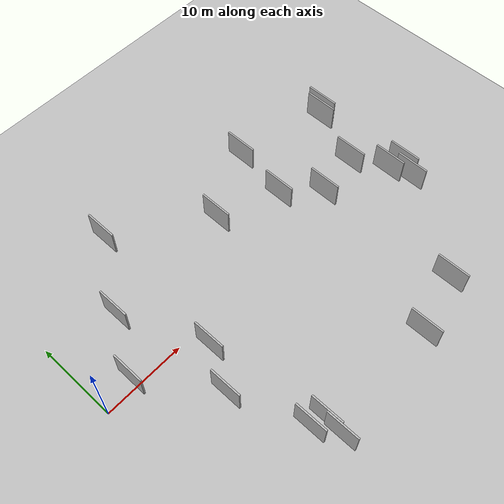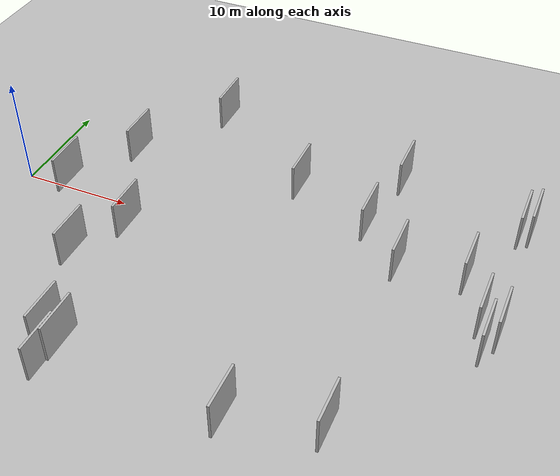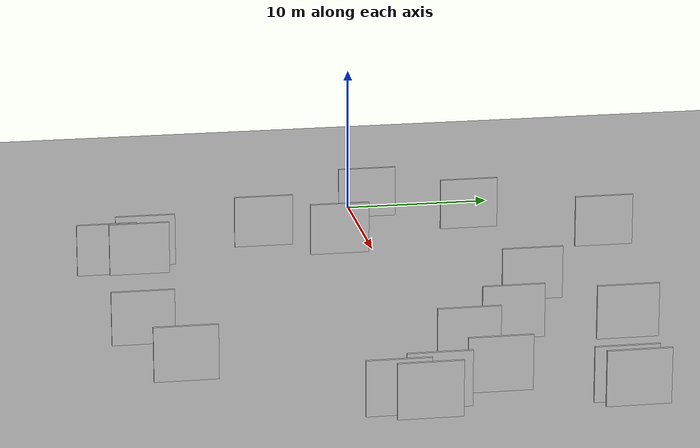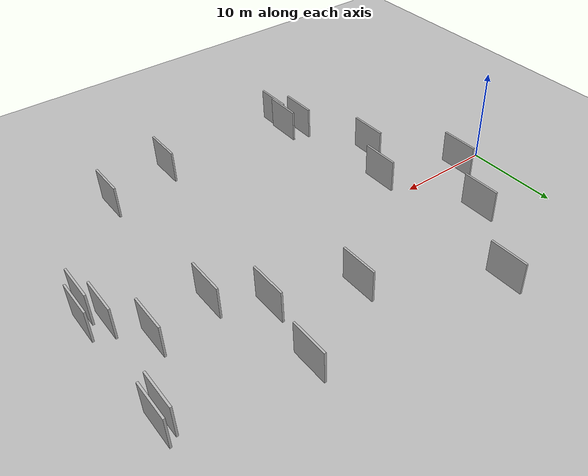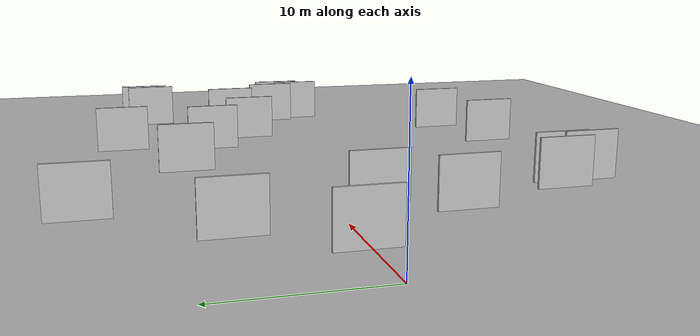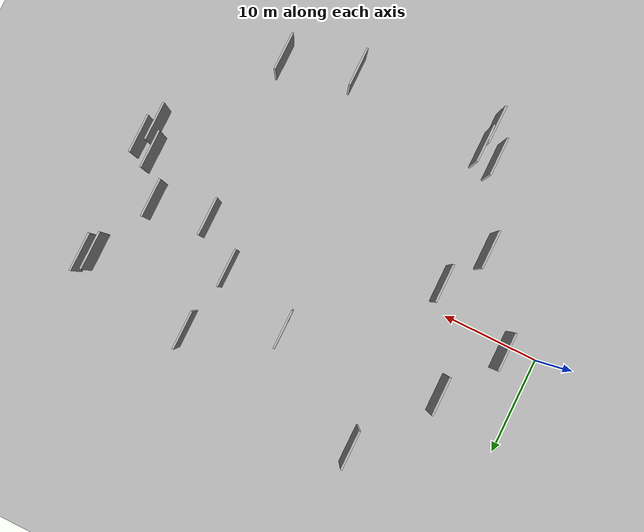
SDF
<?xml version="1.0" encoding="utf-8"?>

<sdf version="1.6">

   <world name="default">

      <gui fullscreen="0">

         <camera name="user_camera">

            <pose>-15 0 4.57585 0 0 0</pose>

            <view_controller>orbit</view_controller>

         </camera>

      </gui>

      <scene>

         <sky>

           <clouds>

             <speed>12</speed>

           </clouds>

         </sky>

         <ambient>0.4 0.4 0.4 1</ambient>

         <background>0.7 0.7 0.7 1</background>

         <shadows>1</shadows>

      </scene>

      <gravity>0 0 -9.8066</gravity>

      <magnetic_field>6e-06 2.3e-05 -4.2e-05</magnetic_field>

      <physics default="0" name="default_physics" type="ode">

         <ode>

            <solver>

               <type>quick</type>

               <iters>10</iters>

               <sor>1.0</sor>

               <use_dynamic_moi_rescaling>0</use_dynamic_moi_rescaling>

            </solver>

            <constraints>

               <cfm>0</cfm>

               <erp>0.2</erp>

               <contact_max_correcting_vel>100</contact_max_correcting_vel>

               <contact_surface_layer>0.001</contact_surface_layer>

            </constraints>

         </ode>

         <max_step_size>0.004</max_step_size>

         <real_time_factor>1</real_time_factor>

         <real_time_update_rate>250</real_time_update_rate>

      </physics>

      <light name="sun" type="directional">

         <cast_shadows>1</cast_shadows>

         <pose>0 0 10 0 0 0</pose>

         <diffuse>0.8 0.8 0.8 1</diffuse>

         <specular>0.2 0.2 0.2 1</specular>

         <attenuation>

            <range>1000</range>

            <constant>0.9</constant>

            <linear>0.01</linear>

            <quadratic>0.001</quadratic>

         </attenuation>

         <direction>-0.5 0.1 -0.9</direction>

      </light>

      <include>

         <name>ground_plane_1</name>

         <uri>model://HANNAS_ground_plane</uri>

         <pose>0 0 0  0 0 0</pose>

      </include>

      <include>

         <name>ground_plane_2</name>

         <uri>model://HANNAS_ground_plane</uri>

         <pose>100 0 0  0 0 0</pose>

      </include>

      <model name="HANNAS_wall_1">

         <static>1</static>

         <pose frame="">31.3913 5.2946 0.0 0.000000 0.000000 1.570796</pose>

         <link name="link">

            <pose frame="">0 0 2.00 0 0 0</pose>

            <collision name="collision">

               <geometry>

                  <box>

                     <size>4.00 0.2 4.00</size>

                  </box>

               </geometry>

               <max_contacts>10</max_contacts>

               <surface>

                  <contact>

                     <ode/>

                  </contact>

                  <bounce/>

                  <friction>

                     <torsional>

                        <ode/>

                     </torsional>

                     <ode/>

                  </friction>

               </surface>

            </collision>

            <visual name="visual">

               <cast_shadows>0</cast_shadows>

               <geometry>

                  <box>

                     <size>4.00 0.2 4.00</size>

                  </box>

               </geometry>

               <material>

                  <script>

                     <uri>model://HANNAS_wall/materials/scripts</uri>

                     <uri>model://HANNAS_wall/materials/textures</uri>

                     <name>vrc/HANNAS_wall</name>

                  </script>

               </material>

            </visual>

            <self_collide>0</self_collide>

            <enable_wind>0</enable_wind>

            <kinematic>0</kinematic>

         </link>

      </model>

      <model name="HANNAS_wall_2">

         <static>1</static>

         <pose frame="">12.0507 -2.6021 0.0 0.000000 0.000000 1.570796</pose>

         <link name="link">

            <pose frame="">0 0 2.00 0 0 0</pose>

            <collision name="collision">

               <geometry>

                  <box>

                     <size>4.00 0.2 4.00</size>

                  </box>

               </geometry>

               <max_contacts>10</max_contacts>

               <surface>

                  <contact>

                     <ode/>

                  </contact>

                  <bounce/>

                  <friction>

                     <torsional>

                        <ode/>

                     </torsional>

                     <ode/>

                  </friction>

               </surface>

            </collision>

            <visual name="visual">

               <cast_shadows>0</cast_shadows>

               <geometry>

                  <box>

                     <size>4.00 0.2 4.00</size>

                  </box>

               </geometry>

               <material>

                  <script>

                     <uri>model://HANNAS_wall/materials/scripts</uri>

                     <uri>model://HANNAS_wall/materials/textures</uri>

                     <name>vrc/HANNAS_wall</name>

                  </script>

               </material>

            </visual>

            <self_collide>0</self_collide>

            <enable_wind>0</enable_wind>

            <kinematic>0</kinematic>

         </link>

      </model>

      <model name="HANNAS_wall_3">

         <static>1</static>

         <pose frame="">43.1237 -1.7087 0.0 0.000000 0.000000 1.570796</pose>

         <link name="link">

            <pose frame="">0 0 2.00 0 0 0</pose>

            <collision name="collision">

               <geometry>

                  <box>

                     <size>4.00 0.2 4.00</size>

                  </box>

               </geometry>

               <max_contacts>10</max_contacts>

               <surface>

                  <contact>

                     <ode/>

                  </contact>

                  <bounce/>

                  <friction>

                     <torsional>

                        <ode/>

                     </torsional>

                     <ode/>

                  </friction>

               </surface>

            </collision>

            <visual name="visual">

               <cast_shadows>0</cast_shadows>

               <geometry>

                  <box>

                     <size>4.00 0.2 4.00</size>

                  </box>

               </geometry>

               <material>

                  <script>

                     <uri>model://HANNAS_wall/materials/scripts</uri>

                     <uri>model://HANNAS_wall/materials/textures</uri>

                     <name>vrc/HANNAS_wall</name>

                  </script>

               </material>

            </visual>

            <self_collide>0</self_collide>

            <enable_wind>0</enable_wind>

            <kinematic>0</kinematic>

         </link>

      </model>

      <model name="HANNAS_wall_4">

         <static>1</static>

         <pose frame="">7.7312 7.1957 0.0 0.000000 0.000000 1.570796</pose>

         <link name="link">

            <pose frame="">0 0 2.00 0 0 0</pose>

            <collision name="collision">

               <geometry>

                  <box>

                     <size>4.00 0.2 4.00</size>

                  </box>

               </geometry>

               <max_contacts>10</max_contacts>

               <surface>

                  <contact>

                     <ode/>

                  </contact>

                  <bounce/>

                  <friction>

                     <torsional>

                        <ode/>

                     </torsional>

                     <ode/>

                  </friction>

               </surface>

            </collision>

            <visual name="visual">

               <cast_shadows>0</cast_shadows>

               <geometry>

                  <box>

                     <size>4.00 0.2 4.00</size>

                  </box>

               </geometry>

               <material>

                  <script>

                     <uri>model://HANNAS_wall/materials/scripts</uri>

                     <uri>model://HANNAS_wall/materials/textures</uri>

                     <name>vrc/HANNAS_wall</name>

                  </script>

               </material>

            </visual>

            <self_collide>0</self_collide>

            <enable_wind>0</enable_wind>

            <kinematic>0</kinematic>

         </link>

      </model>

      <model name="HANNAS_wall_5">

         <static>1</static>

         <pose frame="">44.7845 -2.5849 0.0 0.000000 0.000000 1.570796</pose>

         <link name="link">

            <pose frame="">0 0 2.00 0 0 0</pose>

            <collision name="collision">

               <geometry>

                  <box>

                     <size>4.00 0.2 4.00</size>

                  </box>

               </geometry>

               <max_contacts>10</max_contacts>

               <surface>

                  <contact>

                     <ode/>

                  </contact>

                  <bounce/>

                  <friction>

                     <torsional>

                        <ode/>

                     </torsional>

                     <ode/>

                  </friction>

               </surface>

            </collision>

            <visual name="visual">

               <cast_shadows>0</cast_shadows>

               <geometry>

                  <box>

                     <size>4.00 0.2 4.00</size>

                  </box>

               </geometry>

               <material>

                  <script>

                     <uri>model://HANNAS_wall/materials/scripts</uri>

                     <uri>model://HANNAS_wall/materials/textures</uri>

                     <name>vrc/HANNAS_wall</name>

                  </script>

               </material>

            </visual>

            <self_collide>0</self_collide>

            <enable_wind>0</enable_wind>

            <kinematic>0</kinematic>

         </link>

      </model>

      <model name="HANNAS_wall_6">

         <static>1</static>

         <pose frame="">13.2322 15.4968 0.0 0.000000 0.000000 1.570796</pose>

         <link name="link">

            <pose frame="">0 0 2.00 0 0 0</pose>

            <collision name="collision">

               <geometry>

                  <box>

                     <size>4.00 0.2 4.00</size>

                  </box>

               </geometry>

               <max_contacts>10</max_contacts>

               <surface>

                  <contact>

                     <ode/>

                  </contact>

                  <bounce/>

                  <friction>

                     <torsional>

                        <ode/>

                     </torsional>

                     <ode/>

                  </friction>

               </surface>

            </collision>

            <visual name="visual">

               <cast_shadows>0</cast_shadows>

               <geometry>

                  <box>

                     <size>4.00 0.2 4.00</size>

                  </box>

               </geometry>

               <material>

                  <script>

                     <uri>model://HANNAS_wall/materials/scripts</uri>

                     <uri>model://HANNAS_wall/materials/textures</uri>

                     <name>vrc/HANNAS_wall</name>

                  </script>

               </material>

            </visual>

            <self_collide>0</self_collide>

            <enable_wind>0</enable_wind>

            <kinematic>0</kinematic>

         </link>

      </model>

      <model name="HANNAS_wall_7">

         <static>1</static>

         <pose frame="">43.9692 -4.3338 0.0 0.000000 0.000000 1.570796</pose>

         <link name="link">

            <pose frame="">0 0 2.00 0 0 0</pose>

            <collision name="collision">

               <geometry>

                  <box>

                     <size>4.00 0.2 4.00</size>

                  </box>

               </geometry>

               <max_contacts>10</max_contacts>

               <surface>

                  <contact>

                     <ode/>

                  </contact>

                  <bounce/>

                  <friction>

                     <torsional>

                        <ode/>

                     </torsional>

                     <ode/>

                  </friction>

               </surface>

            </collision>

            <visual name="visual">

               <cast_shadows>0</cast_shadows>

               <geometry>

                  <box>

                     <size>4.00 0.2 4.00</size>

                  </box>

               </geometry>

               <material>

                  <script>

                     <uri>model://HANNAS_wall/materials/scripts</uri>

                     <uri>model://HANNAS_wall/materials/textures</uri>

                     <name>vrc/HANNAS_wall</name>

                  </script>

               </material>

            </visual>

            <self_collide>0</self_collide>

            <enable_wind>0</enable_wind>

            <kinematic>0</kinematic>

         </link>

      </model>

      <model name="HANNAS_wall_8">

         <static>1</static>

         <pose frame="">35.8231 -15.9979 0.0 0.000000 0.000000 1.570796</pose>

         <link name="link">

            <pose frame="">0 0 2.00 0 0 0</pose>

            <collision name="collision">

               <geometry>

                  <box>

                     <size>4.00 0.2 4.00</size>

                  </box>

               </geometry>

               <max_contacts>10</max_contacts>

               <surface>

                  <contact>

                     <ode/>

                  </contact>

                  <bounce/>

                  <friction>

                     <torsional>

                        <ode/>

                     </torsional>

                     <ode/>

                  </friction>

               </surface>

            </collision>

            <visual name="visual">

               <cast_shadows>0</cast_shadows>

               <geometry>

                  <box>

                     <size>4.00 0.2 4.00</size>

                  </box>

               </geometry>

               <material>

                  <script>

                     <uri>model://HANNAS_wall/materials/scripts</uri>

                     <uri>model://HANNAS_wall/materials/textures</uri>

                     <name>vrc/HANNAS_wall</name>

                  </script>

               </material>

            </visual>

            <self_collide>0</self_collide>

            <enable_wind>0</enable_wind>

            <kinematic>0</kinematic>

         </link>

      </model>

      <model name="HANNAS_wall_9">

         <static>1</static>

         <pose frame="">12.6261 -15.9009 0.0 0.000000 0.000000 1.570796</pose>

         <link name="link">

            <pose frame="">0 0 2.00 0 0 0</pose>

            <collision name="collision">

               <geometry>

                  <box>

                     <size>4.00 0.2 4.00</size>

                  </box>

               </geometry>

               <max_contacts>10</max_contacts>

               <surface>

                  <contact>

                     <ode/>

                  </contact>

                  <bounce/>

                  <friction>

                     <torsional>

                        <ode/>

                     </torsional>

                     <ode/>

                  </friction>

               </surface>

            </collision>

            <visual name="visual">

               <cast_shadows>0</cast_shadows>

               <geometry>

                  <box>

                     <size>4.00 0.2 4.00</size>

                  </box>

               </geometry>

               <material>

                  <script>

                     <uri>model://HANNAS_wall/materials/scripts</uri>

                     <uri>model://HANNAS_wall/materials/textures</uri>

                     <name>vrc/HANNAS_wall</name>

                  </script>

               </material>

            </visual>

            <self_collide>0</self_collide>

            <enable_wind>0</enable_wind>

            <kinematic>0</kinematic>

         </link>

      </model>

      <model name="HANNAS_wall_10">

         <static>1</static>

         <pose frame="">3.9211 0.6771 0.0 0.000000 0.000000 1.570796</pose>

         <link name="link">

            <pose frame="">0 0 2.00 0 0 0</pose>

            <collision name="collision">

               <geometry>

                  <box>

                     <size>4.00 0.2 4.00</size>

                  </box>

               </geometry>

               <max_contacts>10</max_contacts>

               <surface>

                  <contact>

                     <ode/>

                  </contact>

                  <bounce/>

                  <friction>

                     <torsional>

                        <ode/>

                     </torsional>

                     <ode/>

                  </friction>

               </surface>

            </collision>

            <visual name="visual">

               <cast_shadows>0</cast_shadows>

               <geometry>

                  <box>

                     <size>4.00 0.2 4.00</size>

                  </box>

               </geometry>

               <material>

                  <script>

                     <uri>model://HANNAS_wall/materials/scripts</uri>

                     <uri>model://HANNAS_wall/materials/textures</uri>

                     <name>vrc/HANNAS_wall</name>

                  </script>

               </material>

            </visual>

            <self_collide>0</self_collide>

            <enable_wind>0</enable_wind>

            <kinematic>0</kinematic>

         </link>

      </model>

      <model name="HANNAS_wall_11">

         <static>1</static>

         <pose frame="">14.1235 -18.6439 0.0 0.000000 0.000000 1.570796</pose>

         <link name="link">

            <pose frame="">0 0 2.00 0 0 0</pose>

            <collision name="collision">

               <geometry>

                  <box>

                     <size>4.00 0.2 4.00</size>

                  </box>

               </geometry>

               <max_contacts>10</max_contacts>

               <surface>

                  <contact>

                     <ode/>

                  </contact>

                  <bounce/>

                  <friction>

                     <torsional>

                        <ode/>

                     </torsional>

                     <ode/>

                  </friction>

               </surface>

            </collision>

            <visual name="visual">

               <cast_shadows>0</cast_shadows>

               <geometry>

                  <box>

                     <size>4.00 0.2 4.00</size>

                  </box>

               </geometry>

               <material>

                  <script>

                     <uri>model://HANNAS_wall/materials/scripts</uri>

                     <uri>model://HANNAS_wall/materials/textures</uri>

                     <name>vrc/HANNAS_wall</name>

                  </script>

               </material>

            </visual>

            <self_collide>0</self_collide>

            <enable_wind>0</enable_wind>

            <kinematic>0</kinematic>

         </link>

      </model>

      <model name="HANNAS_wall_12">

         <static>1</static>

         <pose frame="">35.2363 1.6685 0.0 0.000000 0.000000 1.570796</pose>

         <link name="link">

            <pose frame="">0 0 2.00 0 0 0</pose>

            <collision name="collision">

               <geometry>

                  <box>

                     <size>4.00 0.2 4.00</size>

                  </box>

               </geometry>

               <max_contacts>10</max_contacts>

               <surface>

                  <contact>

                     <ode/>

                  </contact>

                  <bounce/>

                  <friction>

                     <torsional>

                        <ode/>

                     </torsional>

                     <ode/>

                  </friction>

               </surface>

            </collision>

            <visual name="visual">

               <cast_shadows>0</cast_shadows>

               <geometry>

                  <box>

                     <size>4.00 0.2 4.00</size>

                  </box>

               </geometry>

               <material>

                  <script>

                     <uri>model://HANNAS_wall/materials/scripts</uri>

                     <uri>model://HANNAS_wall/materials/textures</uri>

                     <name>vrc/HANNAS_wall</name>

                  </script>

               </material>

            </visual>

            <self_collide>0</self_collide>

            <enable_wind>0</enable_wind>

            <kinematic>0</kinematic>

         </link>

      </model>

      <model name="HANNAS_wall_13">

         <static>1</static>

         <pose frame="">40.9238 2.4556 0.0 0.000000 0.000000 1.570796</pose>

         <link name="link">

            <pose frame="">0 0 2.00 0 0 0</pose>

            <collision name="collision">

               <geometry>

                  <box>

                     <size>4.00 0.2 4.00</size>

                  </box>

               </geometry>

               <max_contacts>10</max_contacts>

               <surface>

                  <contact>

                     <ode/>

                  </contact>

                  <bounce/>

                  <friction>

                     <torsional>

                        <ode/>

                     </torsional>

                     <ode/>

                  </friction>

               </surface>

            </collision>

            <visual name="visual">

               <cast_shadows>0</cast_shadows>

               <geometry>

                  <box>

                     <size>4.00 0.2 4.00</size>

                  </box>

               </geometry>

               <material>

                  <script>

                     <uri>model://HANNAS_wall/materials/scripts</uri>

                     <uri>model://HANNAS_wall/materials/textures</uri>

                     <name>vrc/HANNAS_wall</name>

                  </script>

               </material>

            </visual>

            <self_collide>0</self_collide>

            <enable_wind>0</enable_wind>

            <kinematic>0</kinematic>

         </link>

      </model>

      <model name="HANNAS_wall_14">

         <static>1</static>

         <pose frame="">44.6537 10.0990 0.0 0.000000 0.000000 1.570796</pose>

         <link name="link">

            <pose frame="">0 0 2.00 0 0 0</pose>

            <collision name="collision">

               <geometry>

                  <box>

                     <size>4.00 0.2 4.00</size>

                  </box>

               </geometry>

               <max_contacts>10</max_contacts>

               <surface>

                  <contact>

                     <ode/>

                  </contact>

                  <bounce/>

                  <friction>

                     <torsional>

                        <ode/>

                     </torsional>

                     <ode/>

                  </friction>

               </surface>

            </collision>

            <visual name="visual">

               <cast_shadows>0</cast_shadows>

               <geometry>

                  <box>

                     <size>4.00 0.2 4.00</size>

                  </box>

               </geometry>

               <material>

                  <script>

                     <uri>model://HANNAS_wall/materials/scripts</uri>

                     <uri>model://HANNAS_wall/materials/textures</uri>

                     <name>vrc/HANNAS_wall</name>

                  </script>

               </material>

            </visual>

            <self_collide>0</self_collide>

            <enable_wind>0</enable_wind>

            <kinematic>0</kinematic>

         </link>

      </model>

      <model name="HANNAS_wall_15">

         <static>1</static>

         <pose frame="">43.8192 9.5526 0.0 0.000000 0.000000 1.570796</pose>

         <link name="link">

            <pose frame="">0 0 2.00 0 0 0</pose>

            <collision name="collision">

               <geometry>

                  <box>

                     <size>4.00 0.2 4.00</size>

                  </box>

               </geometry>

               <max_contacts>10</max_contacts>

               <surface>

                  <contact>

                     <ode/>

                  </contact>

                  <bounce/>

                  <friction>

                     <torsional>

                        <ode/>

                     </torsional>

                     <ode/>

                  </friction>

               </surface>

            </collision>

            <visual name="visual">

               <cast_shadows>0</cast_shadows>

               <geometry>

                  <box>

                     <size>4.00 0.2 4.00</size>

                  </box>

               </geometry>

               <material>

                  <script>

                     <uri>model://HANNAS_wall/materials/scripts</uri>

                     <uri>model://HANNAS_wall/materials/textures</uri>

                     <name>vrc/HANNAS_wall</name>

                  </script>

               </material>

            </visual>

            <self_collide>0</self_collide>

            <enable_wind>0</enable_wind>

            <kinematic>0</kinematic>

         </link>

      </model>

      <model name="HANNAS_wall_16">

         <static>1</static>

         <pose frame="">14.3316 -16.5006 0.0 0.000000 0.000000 1.570796</pose>

         <link name="link">

            <pose frame="">0 0 2.00 0 0 0</pose>

            <collision name="collision">

               <geometry>

                  <box>

                     <size>4.00 0.2 4.00</size>

                  </box>

               </geometry>

               <max_contacts>10</max_contacts>

               <surface>

                  <contact>

                     <ode/>

                  </contact>

                  <bounce/>

                  <friction>

                     <torsional>

                        <ode/>

                     </torsional>

                     <ode/>

                  </friction>

               </surface>

            </collision>

            <visual name="visual">

               <cast_shadows>0</cast_shadows>

               <geometry>

                  <box>

                     <size>4.00 0.2 4.00</size>

                  </box>

               </geometry>

               <material>

                  <script>

                     <uri>model://HANNAS_wall/materials/scripts</uri>

                     <uri>model://HANNAS_wall/materials/textures</uri>

                     <name>vrc/HANNAS_wall</name>

                  </script>

               </material>

            </visual>

            <self_collide>0</self_collide>

            <enable_wind>0</enable_wind>

            <kinematic>0</kinematic>

         </link>

      </model>

      <model name="HANNAS_wall_17">

         <static>1</static>

         <pose frame="">32.4930 12.4186 0.0 0.000000 0.000000 1.570796</pose>

         <link name="link">

            <pose frame="">0 0 2.00 0 0 0</pose>

            <collision name="collision">

               <geometry>

                  <box>

                     <size>4.00 0.2 4.00</size>

                  </box>

               </geometry>

               <max_contacts>10</max_contacts>

               <surface>

                  <contact>

                     <ode/>

                  </contact>

                  <bounce/>

                  <friction>

                     <torsional>

                        <ode/>

                     </torsional>

                     <ode/>

                  </friction>

               </surface>

            </collision>

            <visual name="visual">

               <cast_shadows>0</cast_shadows>

               <geometry>

                  <box>

                     <size>4.00 0.2 4.00</size>

                  </box>

               </geometry>

               <material>

                  <script>

                     <uri>model://HANNAS_wall/materials/scripts</uri>

                     <uri>model://HANNAS_wall/materials/textures</uri>

                     <name>vrc/HANNAS_wall</name>

                  </script>

               </material>

            </visual>

            <self_collide>0</self_collide>

            <enable_wind>0</enable_wind>

            <kinematic>0</kinematic>

         </link>

      </model>

      <model name="HANNAS_wall_18">

         <static>1</static>

         <pose frame="">9.4847 -7.4475 0.0 0.000000 0.000000 1.570796</pose>

         <link name="link">

            <pose frame="">0 0 2.00 0 0 0</pose>

            <collision name="collision">

               <geometry>

                  <box>

                     <size>4.00 0.2 4.00</size>

                  </box>

               </geometry>

               <max_contacts>10</max_contacts>

               <surface>

                  <contact>

                     <ode/>

                  </contact>

                  <bounce/>

                  <friction>

                     <torsional>

                        <ode/>

                     </torsional>

                     <ode/>

                  </friction>

               </surface>

            </collision>

            <visual name="visual">

               <cast_shadows>0</cast_shadows>

               <geometry>

                  <box>

                     <size>4.00 0.2 4.00</size>

                  </box>

               </geometry>

               <material>

                  <script>

                     <uri>model://HANNAS_wall/materials/scripts</uri>

                     <uri>model://HANNAS_wall/materials/textures</uri>

                     <name>vrc/HANNAS_wall</name>

                  </script>

               </material>

            </visual>

            <self_collide>0</self_collide>

            <enable_wind>0</enable_wind>

            <kinematic>0</kinematic>

         </link>

      </model>

      <model name="HANNAS_wall_19">

         <static>1</static>

         <pose frame="">23.9422 8.1452 0.0 0.000000 0.000000 1.570796</pose>

         <link name="link">

            <pose frame="">0 0 2.00 0 0 0</pose>

            <collision name="collision">

               <geometry>

                  <box>

                     <size>4.00 0.2 4.00</size>

                  </box>

               </geometry>

               <max_contacts>10</max_contacts>

               <surface>

                  <contact>

                     <ode/>

                  </contact>

                  <bounce/>

                  <friction>

                     <torsional>

                        <ode/>

                     </torsional>

                     <ode/>

                  </friction>

               </surface>

            </collision>

            <visual name="visual">

               <cast_shadows>0</cast_shadows>

               <geometry>

                  <box>

                     <size>4.00 0.2 4.00</size>

                  </box>

               </geometry>

               <material>

                  <script>

                     <uri>model://HANNAS_wall/materials/scripts</uri>

                     <uri>model://HANNAS_wall/materials/textures</uri>

                     <name>vrc/HANNAS_wall</name>

                  </script>

               </material>

            </visual>

            <self_collide>0</self_collide>

            <enable_wind>0</enable_wind>

            <kinematic>0</kinematic>

         </link>

      </model>

      <model name="HANNAS_wall_20">

         <static>1</static>

         <pose frame="">28.6317 -17.8260 0.0 0.000000 0.000000 1.570796</pose>

         <link name="link">

            <pose frame="">0 0 2.00 0 0 0</pose>

            <collision name="collision">

               <geometry>

                  <box>

                     <size>4.00 0.2 4.00</size>

                  </box>

               </geometry>

               <max_contacts>10</max_contacts>

               <surface>

                  <contact>

                     <ode/>

                  </contact>

                  <bounce/>

                  <friction>

                     <torsional>

                        <ode/>

                     </torsional>

                     <ode/>

                  </friction>

               </surface>

            </collision>

            <visual name="visual">

               <cast_shadows>0</cast_shadows>

               <geometry>

                  <box>

                     <size>4.00 0.2 4.00</size>

                  </box>

               </geometry>

               <material>

                  <script>

                     <uri>model://HANNAS_wall/materials/scripts</uri>

                     <uri>model://HANNAS_wall/materials/textures</uri>

                     <name>vrc/HANNAS_wall</name>

                  </script>

               </material>

            </visual>

            <self_collide>0</self_collide>

            <enable_wind>0</enable_wind>

            <kinematic>0</kinematic>

         </link>

      </model>

   </world>

</sdf>

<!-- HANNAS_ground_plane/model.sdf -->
<sdf version="1.4">
<model name="HANNAS_ground_plane">
  <static>true</static>
    <link name="link">
      <collision name="collision">
        <geometry>
          <plane>
            <normal>0 0 1</normal>
            <size>1000 1000</size>
          </plane>
        </geometry>
        <surface>
          <friction>
            <ode>
              <mu>100</mu>
              <mu2>50</mu2>
            </ode>
          </friction>
        </surface>
      </collision>
      <visual name="visual">
        <cast_shadows>false</cast_shadows>
        <geometry>
          <plane>
            <normal>0 0 1</normal>
            <size>1000 1000</size>
          </plane>
        </geometry>
        <material>
          <script>
            <uri>model://HANNAS_ground_plane/materials/scripts/HANNAS_ground_plane.material</uri>
	    <uri>model://HANNAS_ground_plane/materials/textures</uri>
            <name>HANNASGroundPlane/Image</name>
          </script>
        </material>
      </visual>
    </link>
  </model>
</sdf>
